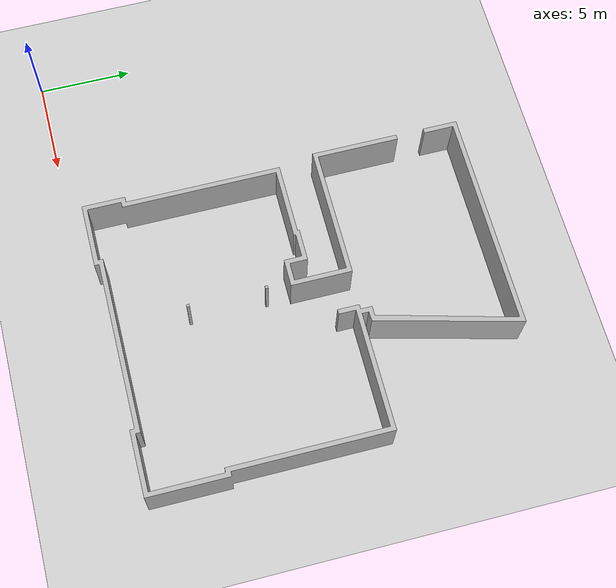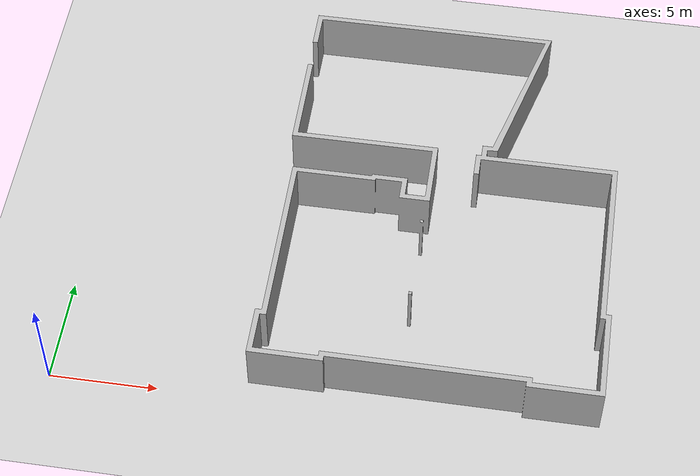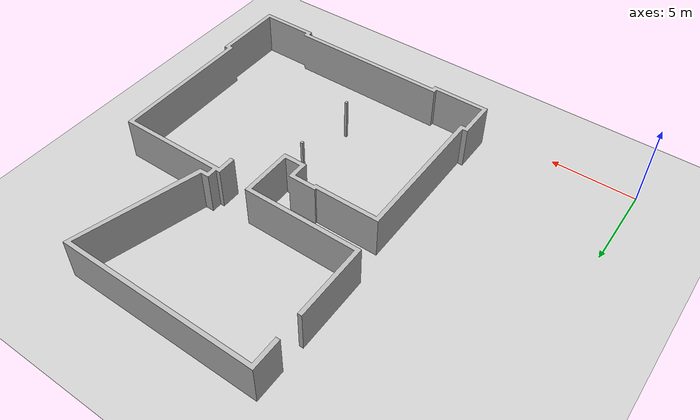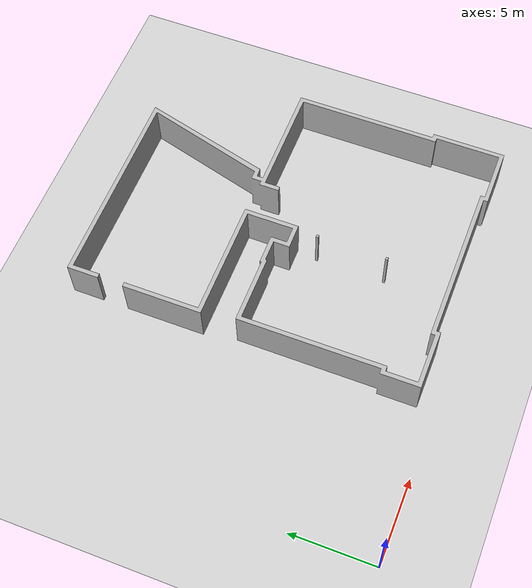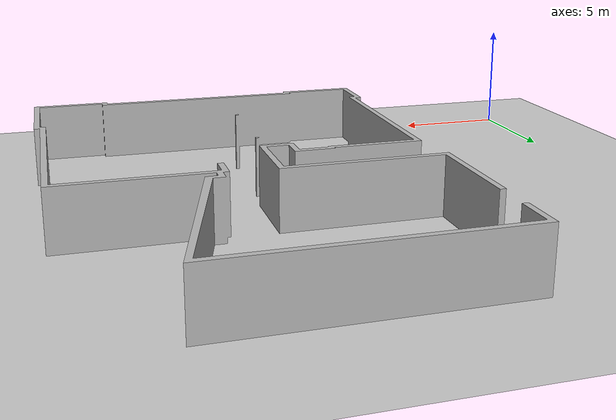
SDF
<?xml version="1.0" ?>
<sdf version="1.5">
  <world name="pbr_moelk">
    <!-- A global light source -->
    <include>
      <uri>model://sun</uri>
    </include>
    <!-- A ground plane -->
    <include>
      <uri>model://ground_plane</uri>
    </include>

    <model name="pbr_moelk">
      <static>true</static>
      <link name="pbr_moelk_link">
        <pose>0 0 0 0 0 0</pose>
        <collision name="pbr_moelk_collision">
          <geometry>
            <mesh>
              <uri>file://Media/models/pbr_robot_lab.stl</uri>
              <scale>1.0 1.0 1.0</scale>
            </mesh>
          </geometry>
        </collision>
        <visual name="pbr_moelk_visual">
          <cast_shadows>false</cast_shadows>
          <geometry>
            <mesh>
              <uri>file://Media/models/pbr_robot_lab.stl</uri>
              <scale>1.0 1.0 1.0</scale>
            </mesh>
          </geometry>
        </visual>
      </link>
    </model>

    <gui fullscreen='0'>
      <camera name='user_camera'>
        <pose frame=''>15.96204 4.53222 2.72129 0 0.455643 -2.779</pose>
        <view_controller>orbit</view_controller>
        <projection_type>perspective</projection_type>
      </camera>
    </gui>
  </world>
</sdf>
